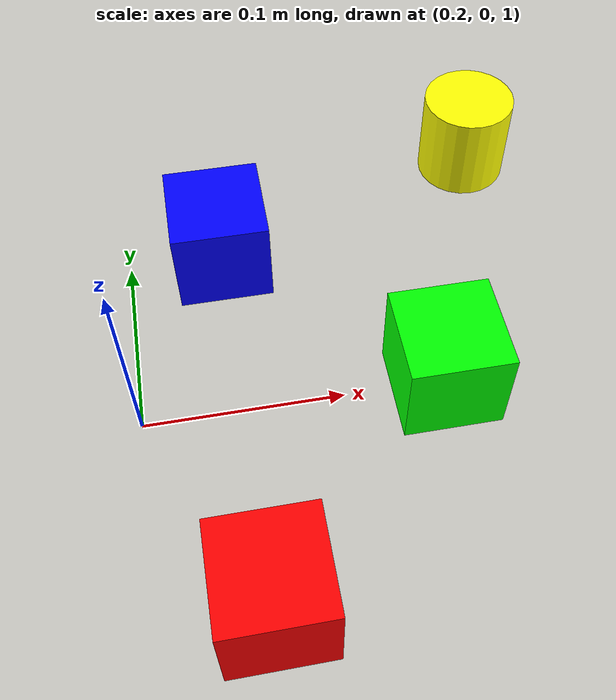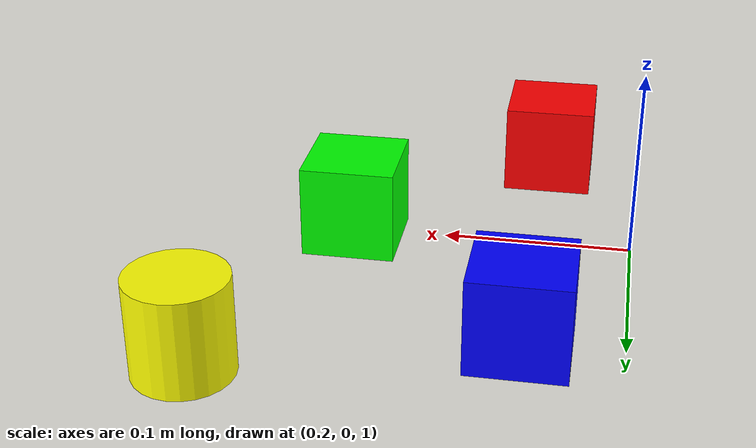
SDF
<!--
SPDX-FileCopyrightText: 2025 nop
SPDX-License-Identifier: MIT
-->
<sdf version="1.6">
 <world name="pick_and_place">
  <physics name="fast" type="ignored">
   <max_step_size>0.002</max_step_size>
   <real_time_factor>0</real_time_factor>
   <real_time_update_rate>0</real_time_update_rate>
  </physics>
  <plugin filename="ignition-gazebo-physics-system" name="ignition::gazebo::systems::Physics"/>
  <plugin filename="ignition-gazebo-user-commands-system" name="ignition::gazebo::systems::UserCommands"/>
  <plugin filename="ignition-gazebo-scene-broadcaster-system" name="ignition::gazebo::systems::SceneBroadcaster"/>
  <plugin filename="ignition-gazebo-sensors-system" name="ignition::gazebo::systems::Sensors">
   <render_engine>ogre2</render_engine>
  </plugin>
  <scene><ambient>0.8 0.8 0.8 1</ambient><background>0.3 0.3 0.3 1</background><shadows>false</shadows></scene>
  <light name="sun" type="directional">
   <cast_shadows>false</cast_shadows>
   <pose>0 0 10 0 0 0</pose>
   <diffuse>0.8 0.8 0.8 1</diffuse>
   <specular>0.2 0.2 0.2 1</specular>
   <direction>-0.5 0.1 -0.9</direction>
  </light>
  <include><uri>https://fuel.ignitionrobotics.org/1.0/OpenRobotics/models/Ground%20Plane</uri></include>
  <model name="red_cube">
   <pose>0.25 -0.1 1.02 0 0 0</pose>
   <static>false</static>
   <link name="link">
    <collision name="collision"><geometry><box><size>0.05 0.05 0.05</size></box></geometry></collision>
    <visual name="visual">
     <geometry><box><size>0.05 0.05 0.05</size></box></geometry>
     <material><ambient>1 0 0 1</ambient><diffuse>1 0 0 1</diffuse><specular>1 0 0 1</specular></material>
    </visual>
    <inertial>
     <mass>0.05</mass>
     <inertia><ixx>0.000020833</ixx><iyy>0.000020833</iyy><izz>0.000020833</izz></inertia>
    </inertial>
   </link>
  </model>
  <model name="blue_cube">
   <pose>0.25 0.1 1.02 0 0 0</pose>
   <static>false</static>
   <link name="link">
    <collision name="collision"><geometry><box><size>0.05 0.05 0.05</size></box></geometry></collision>
    <visual name="visual">
     <geometry><box><size>0.05 0.05 0.05</size></box></geometry>
     <material><ambient>0 0 1 1</ambient><diffuse>0 0 1 1</diffuse><specular>0 0 1 1</specular></material>
    </visual>
    <inertial>
     <mass>0.05</mass>
     <inertia><ixx>0.000020833</ixx><iyy>0.000020833</iyy><izz>0.000020833</izz></inertia>
    </inertial>
   </link>
  </model>
  <model name="green_cube">
   <pose>0.35 0.0 1.02 0 0 0</pose>
   <static>false</static>
   <link name="link">
    <collision name="collision"><geometry><box><size>0.05 0.05 0.05</size></box></geometry></collision>
    <visual name="visual">
     <geometry><box><size>0.05 0.05 0.05</size></box></geometry>
     <material><ambient>0 1 0 1</ambient><diffuse>0 1 0 1</diffuse><specular>0 1 0 1</specular></material>
    </visual>
    <inertial>
     <mass>0.05</mass>
     <inertia><ixx>0.000020833</ixx><iyy>0.000020833</iyy><izz>0.000020833</izz></inertia>
    </inertial>
   </link>
  </model>
  <model name="yellow_cylinder">
   <pose>0.4 0.15 1.025 0 0 0</pose>
   <static>false</static>
   <link name="link">
    <collision name="collision">
     <geometry><cylinder><radius>0.025</radius><length>0.05</length></cylinder></geometry>
    </collision>
    <visual name="visual">
     <geometry><cylinder><radius>0.025</radius><length>0.05</length></cylinder></geometry>
     <material><ambient>1 1 0 1</ambient><diffuse>1 1 0 1</diffuse><specular>1 1 0 1</specular></material>
    </visual>
    <inertial>
     <mass>0.03</mass>
     <inertia><ixx>0.000013125</ixx><iyy>0.000013125</iyy><izz>0.0000093750</izz></inertia>
    </inertial>
   </link>
  </model>
  <light name="extra_light" type="point">
   <pose>0.3 0 2.0 0 0 0</pose>
   <diffuse>0.8 0.8 0.8 1</diffuse>
   <specular>0.5 0.5 0.5 1</specular>
   <attenuation>
    <range>20</range>
    <constant>0.5</constant>
    <linear>0.01</linear>
    <quadratic>0.001</quadratic>
   </attenuation>
  </light>
 </world>
</sdf>
